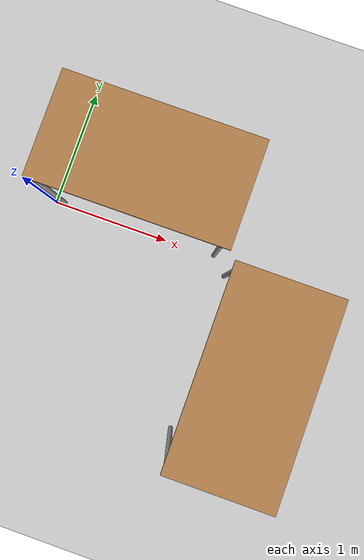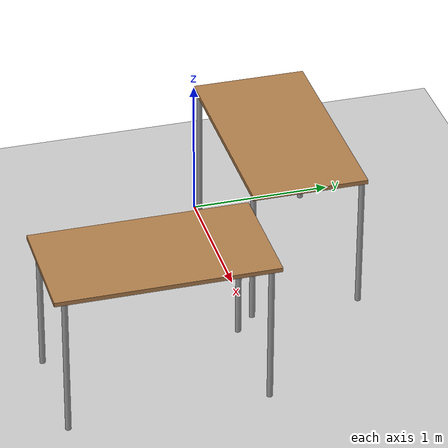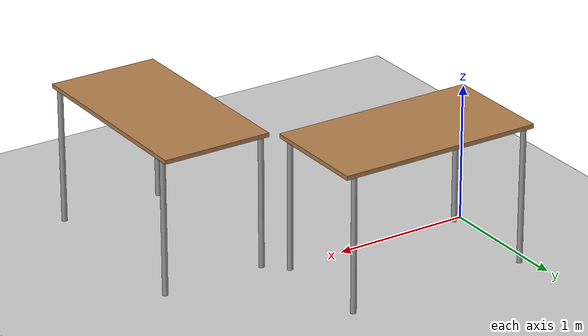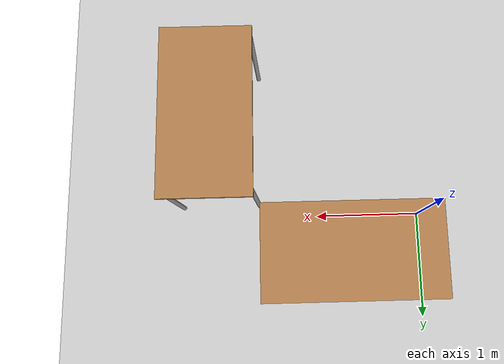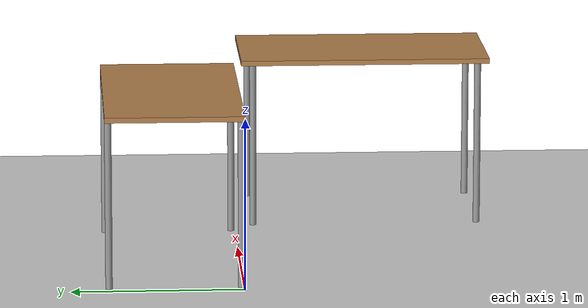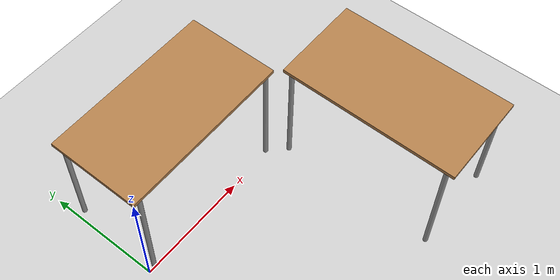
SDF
<?xml version="1.0" ?>
<sdf version="1.6">
  <world name="lab3">

    <!-- Física -->
    <physics type='ode'>
      <real_time_update_rate>1000.0</real_time_update_rate>
    </physics>

    <!-- Iluminação -->
    <include>
      <uri>model://sun</uri>
    </include>

    <!-- Chão -->
    <include>
      <uri>model://ground_plane</uri>
    </include>

    <!-- Mesa 1 -->
    <include>
      <uri>model://table</uri>
      <name>mesa_1</name>
      <pose>0.75 0.4 0 0 0 0</pose>
    </include>

    <!-- Mesa 2 -->
    <include>
      <uri>model://table</uri>
      <name>mesa_2</name>
      <pose>1.95 -0.8 0 0 0 1.57</pose>
    </include>

  </world>
</sdf>

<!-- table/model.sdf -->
<sdf version="1.5">
  <model name="table">
    <static>true</static>
    <link name="link">
      <collision name="surface">
        <pose>0 0 1.0 0 0 0</pose>
        <geometry>
          <box>
            <size>1.5 0.8 0.03</size>
          </box>
        </geometry>
        <surface>
          <friction>
            <ode>
              <mu>0.6</mu>
              <mu2>0.6</mu2>
            </ode>
          </friction>
        </surface>
      </collision>
      <visual name="visual1">
        <pose>0 0 1.0 0 0 0</pose>
        <geometry>
          <box>
            <size>1.5 0.8 0.03</size>
          </box>
        </geometry>
        <material>
          <script>
            <uri>model://media/materials/scripts/gazebo.material</uri>
            <name>Gazebo/Wood</name>
          </script>
        </material>
      </visual>
      <collision name="front_left_leg">
        <pose>0.68 0.38 0.5 0 0 0</pose>
        <geometry>
          <cylinder>
            <radius>0.02</radius>
            <length>1.0</length>
          </cylinder>
        </geometry>
      </collision>
      <visual name="front_left_leg">
        <pose>0.68 0.38 0.5 0 0 0</pose>
        <geometry>
          <cylinder>
            <radius>0.02</radius>
            <length>1.0</length>
          </cylinder>
        </geometry>
        <material>
          <script>
            <uri>model://media/materials/scripts/gazebo.material</uri>
            <name>Gazebo/Grey</name>
          </script>
        </material>
      </visual>
      <collision name="front_right_leg">
        <pose>0.68 -0.38 0.5 0 0 0</pose>
        <geometry>
          <cylinder>
            <radius>0.02</radius>
            <length>1.0</length>
          </cylinder>
        </geometry>
      </collision>
      <visual name="front_right_leg">
        <pose>0.68 -0.38 0.5 0 0 0</pose>
        <geometry>
          <cylinder>
            <radius>0.02</radius>
            <length>1.0</length>
          </cylinder>
        </geometry>
        <material>
          <script>
            <uri>model://media/materials/scripts/gazebo.material</uri>
            <name>Gazebo/Grey</name>
          </script>
        </material>
      </visual>
      <collision name="back_right_leg">
        <pose>-0.68 -0.38 0.5 0 0 0</pose>
        <geometry>
          <cylinder>
            <radius>0.02</radius>
            <length>1.0</length>
          </cylinder>
        </geometry>
      </collision>
      <visual name="back_right_leg">
        <pose>-0.68 -0.38 0.5 0 0 0</pose>
        <geometry>
          <cylinder>
            <radius>0.02</radius>
            <length>1.0</length>
          </cylinder>
        </geometry>
        <material>
          <script>
            <uri>model://media/materials/scripts/gazebo.material</uri>
            <name>Gazebo/Grey</name>
          </script>
        </material>
      </visual>
      <collision name="back_left_leg">
        <pose>-0.68 0.38 0.5 0 0 0</pose>
        <geometry>
          <cylinder>
            <radius>0.02</radius>
            <length>1.0</length>
          </cylinder>
        </geometry>
      </collision>
      <visual name="back_left_leg">
        <pose>-0.68 0.38 0.5 0 0 0</pose>
        <geometry>
          <cylinder>
            <radius>0.02</radius>
            <length>1.0</length>
          </cylinder>
        </geometry>
        <material>
          <script>
            <uri>model://media/materials/scripts/gazebo.material</uri>
            <name>Gazebo/Grey</name>
          </script>
        </material>
      </visual>
    </link>
  </model>
</sdf>
